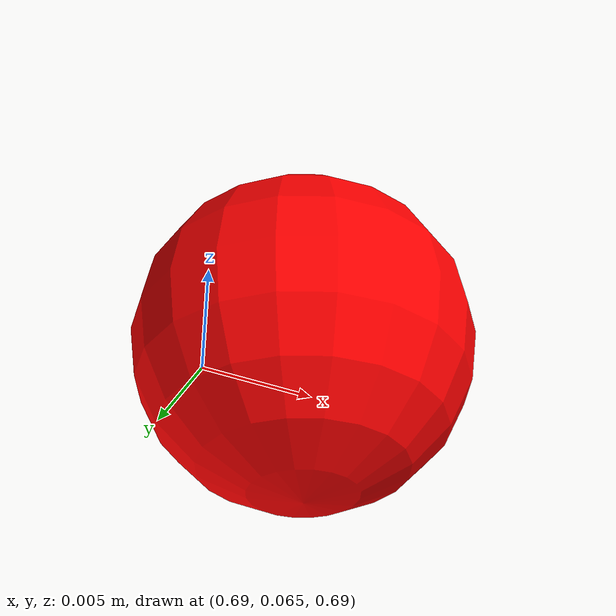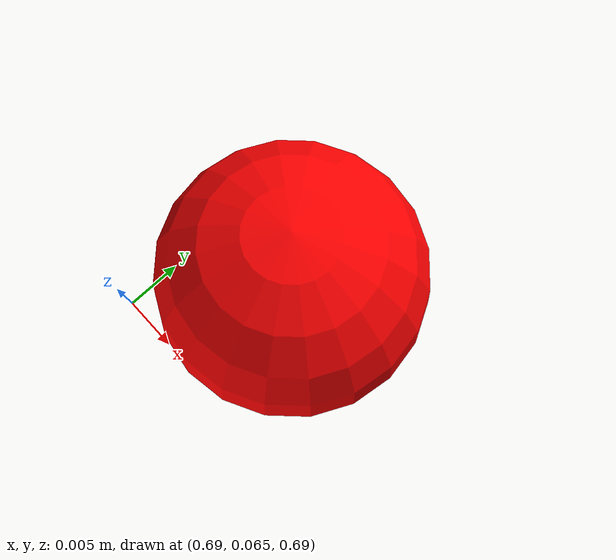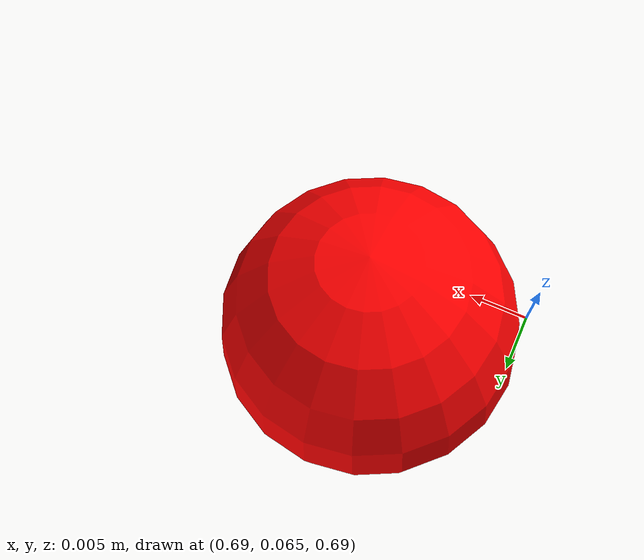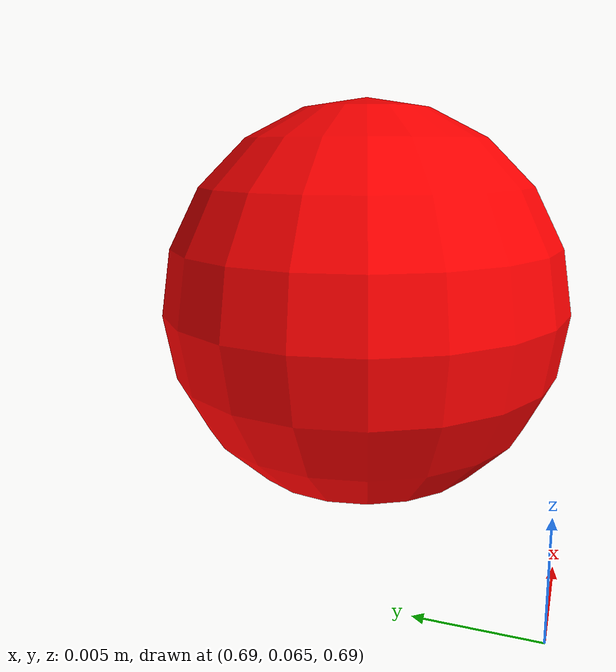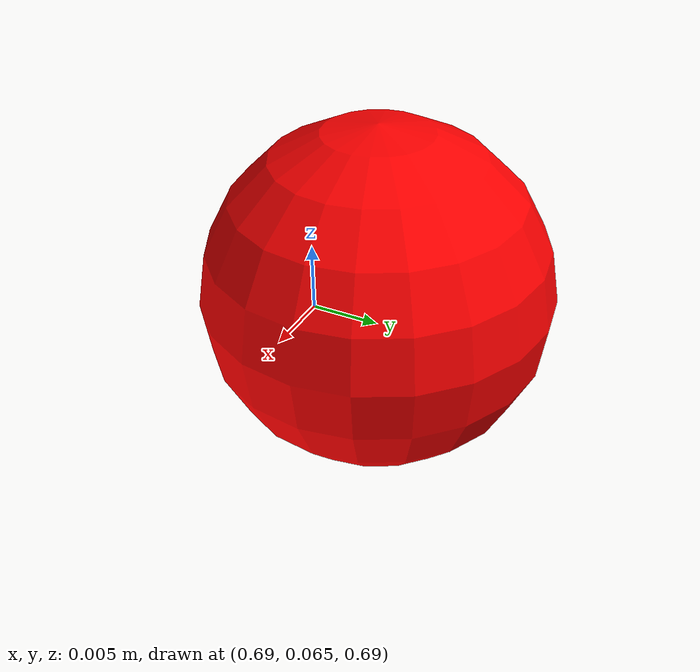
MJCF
<mujoco>
  <compiler meshdir="objects"/>
    <option timestep="0.001" integrator="RK4" solver="CG" gravity="0 0 -9.81">
    <flag sensornoise="disable" />
  </option>

  <asset>
    <texture name="grid" type="2d" builtin="checker" width="512" height="512" rgb1=".1 .2 .3" rgb2=".2 .3 .4" />
    <material name="grid" texture="grid" texrepeat="1 1" texuniform="true" reflectance=".2" />
  </asset>

  <worldbody>
    <geom name="floor" size="0 0 .05" type="plane" material="grid" condim="3" />
    <light diffuse="1 1 1" pos="0 0 4" dir="0 0 -1" />
    <light diffuse="1 1 1" pos="1 -1 4" dir="0 0 -1" />
  </worldbody>

    <worldbody>
		<body name="sync_ball" pos="0.7 0.075 0.7">
			<freejoint/>
			<geom type="sphere" size="0.01" rgba="1 0 0 1" condim="6" priority="2" friction="3 0.005 0.001"/>
		</body>
	</worldbody>
</mujoco>
